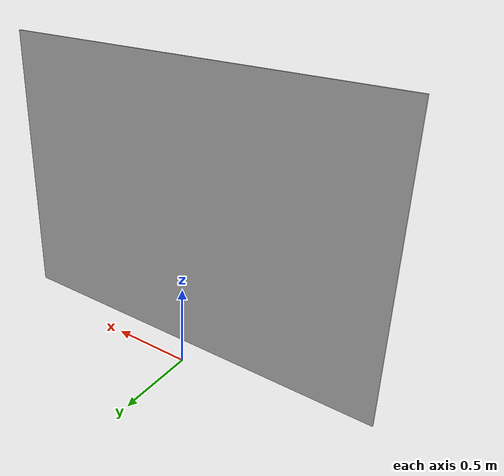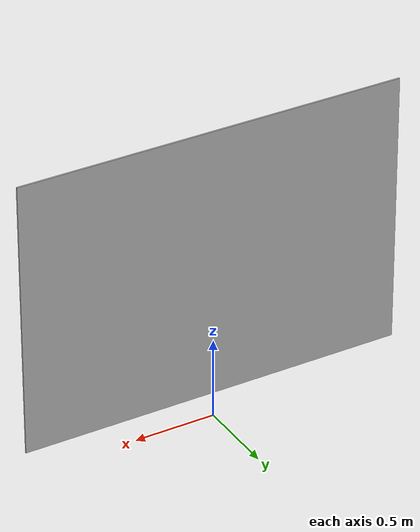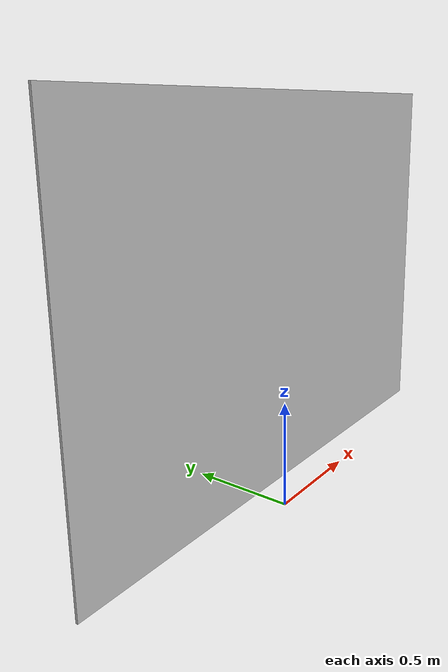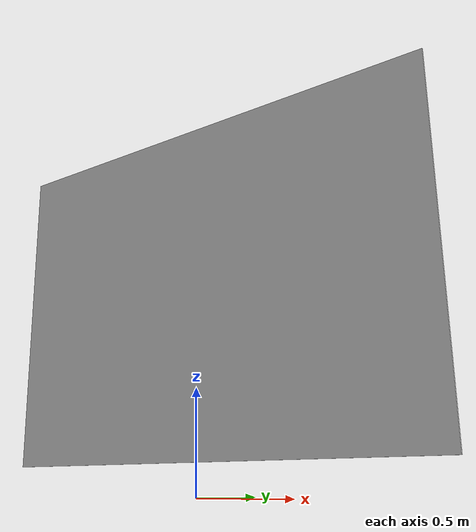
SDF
<?xml version="1.0" ?>
<sdf version="1.5">
  <model name="C0">
    <pose>0 0 1 0 0 0</pose>
    <static>true</static>
    <link name="link">
      <inertial>
        <mass>1.0</mass>
        <inertia> <!-- inertias are tricky to compute -->
          <!-- http://gazebosim.org/tutorials?tut=inertia&cat=build_robot -->
          <ixx>0.083</ixx>       <!-- for a box: ixx = 0.083 * mass * (y*y + z*z) -->
          <ixy>0.0</ixy>         <!-- for a box: ixy = 0 -->
          <ixz>0.0</ixz>         <!-- for a box: ixz = 0 -->
          <iyy>0.083</iyy>       <!-- for a box: iyy = 0.083 * mass * (x*x + z*z) -->
          <iyz>0.0</iyz>         <!-- for a box: iyz = 0 -->
          <izz>0.083</izz>       <!-- for a box: izz = 0.083 * mass * (x*x + y*y) -->
        </inertia>
      </inertial>
      <collision name="collision">
        <geometry>
          <box>
            <size>2.378 0.01 1.682</size>
          </box>
        </geometry>
      </collision>
      <visual name="visual">
        <geometry>
          <box>
            <size>2.378 0.01 1.682</size>
          </box>
        </geometry>
        <material>
        <script>
        <uri>model://C0/materials/scripts/</uri>
        <uri>model://C0/materials/textures/</uri>
        <name>C0Texture</name>
      </script>
      </material>
      </visual>
    </link>
  </model>
</sdf>
